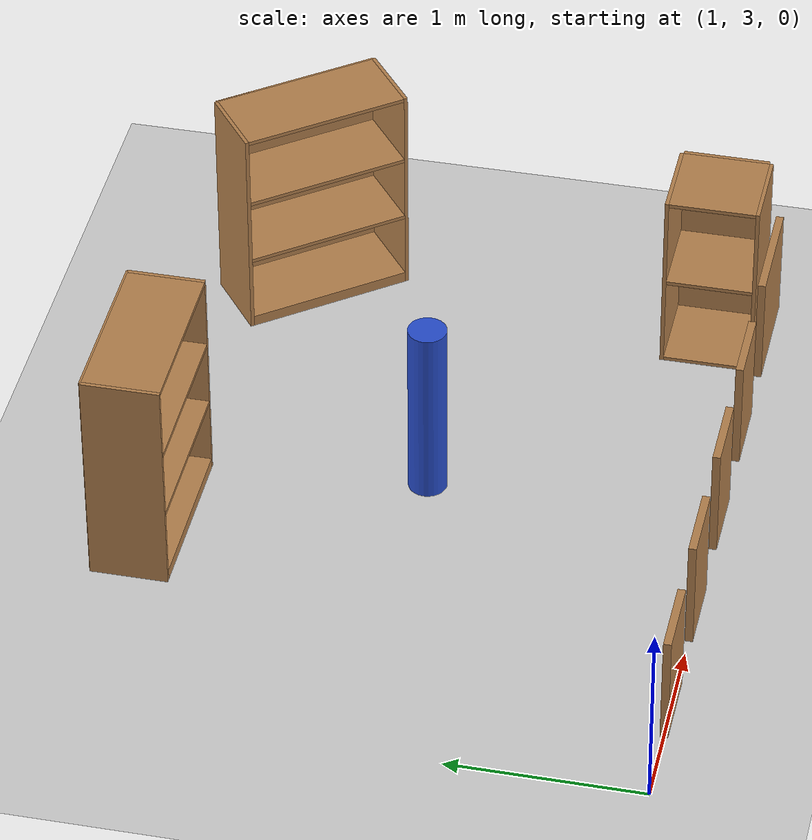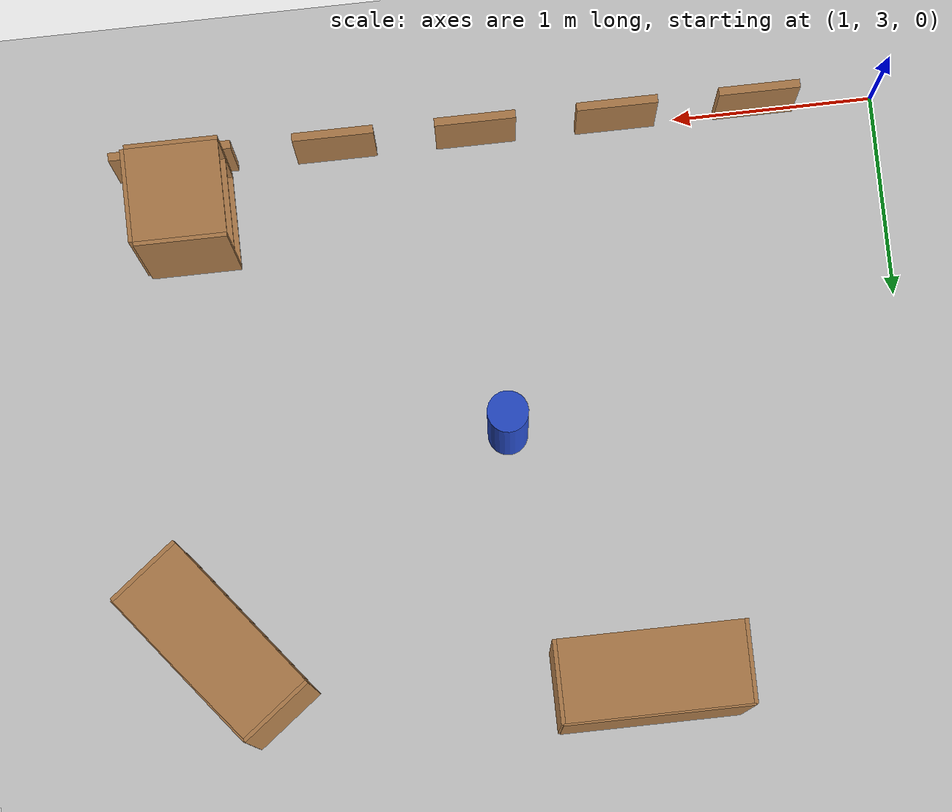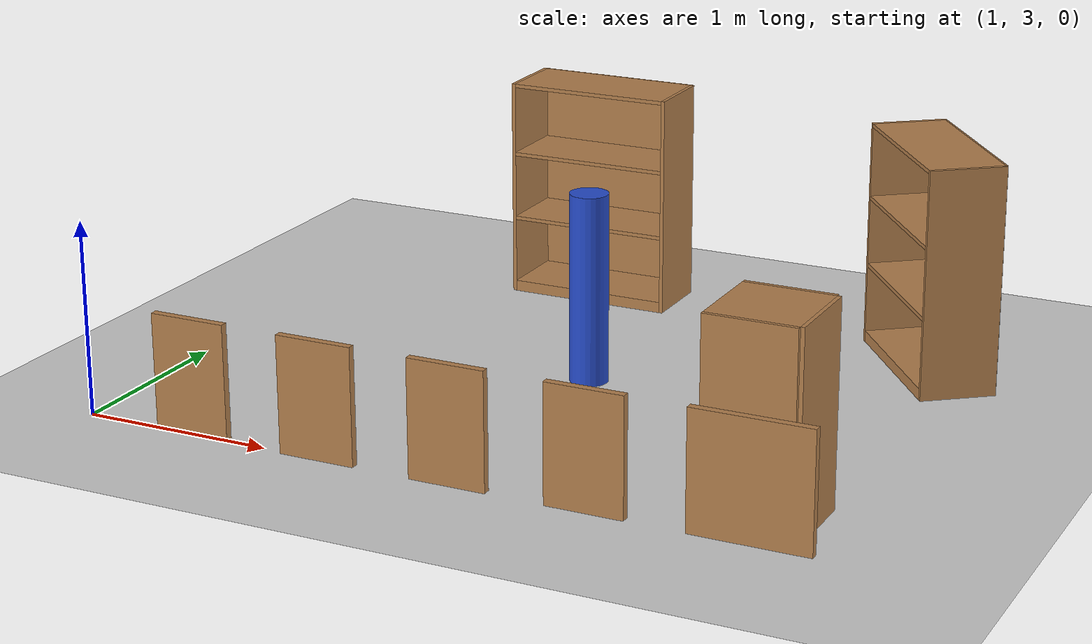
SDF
<sdf version="1.4">
 <world name="default">
  <model name="ground_plane">
   <static>1</static>
   <link name="link">
    <collision name="collision">
     <geometry><plane><normal>0 0 1</normal><size>50 50</size></plane></geometry>
     <surface><friction><ode><mu>100</mu><mu2>50</mu2></ode></friction></surface>
    </collision>
    <visual name="visual">
     <cast_shadows>0</cast_shadows>
     <geometry><plane><normal>0 0 1</normal><size>100 100</size></plane></geometry>
     <material>
      <script><uri>file://media/materials/scripts/gazebo.material</uri><name>Gazebo/Grey</name></script>
     </material>
    </visual>
    <velocity_decay><linear>0</linear><angular>0</angular></velocity_decay>
   </link>
  </model>
  <model name="target_cylinder_C">
   <pose>3 4.5 0.5 0 -0 0</pose>
   <link name="link">
    <inertial>
     <mass>1</mass>
     <inertia><ixx>1</ixx><ixy>0</ixy><ixz>0</ixz><iyy>1</iyy><iyz>0</iyz><izz>1</izz></inertia>
    </inertial>
    <collision name="collision">
     <geometry><cylinder><radius>0.4</radius><length>1</length></cylinder></geometry>
    </collision>
    <visual name="visual">
     <geometry><cylinder><radius>0.1</radius><length>1</length></cylinder></geometry>
     <material>
      <script><uri>file://media/materials/scripts/gazebo.material</uri><name>Gazebo/Blue</name></script>
     </material>
    </visual>
    <velocity_decay><linear>0</linear><angular>0</angular></velocity_decay>
   </link>
   <static>1</static>
  </model>
  <model name="pillar_wall_3">
   <pose>1.6 3 0.3 0 -0 0</pose>
   <link name="link">
    <inertial>
     <mass>1</mass>
     <inertia><ixx>1</ixx><ixy>0</ixy><ixz>0</ixz><iyy>1</iyy><iyz>0</iyz><izz>1</izz></inertia>
    </inertial>
    <collision name="collision"><geometry><box><size>0.4 0.04 0.6</size></box></geometry></collision>
    <visual name="visual">
     <geometry><box><size>0.4 0.04 0.6</size></box></geometry>
     <material>
      <script><uri>file://media/materials/scripts/gazebo.material</uri><name>Gazebo/Wood</name></script>
     </material>
    </visual>
    <velocity_decay><linear>0</linear><angular>0</angular></velocity_decay>
   </link>
   <static>1</static>
  </model>
  <model name="pillar_wall_4">
   <pose>2.3 3 0.3 0 -0 0</pose>
   <link name="link">
    <inertial>
     <mass>1</mass>
     <inertia><ixx>1</ixx><ixy>0</ixy><ixz>0</ixz><iyy>1</iyy><iyz>0</iyz><izz>1</izz></inertia>
    </inertial>
    <collision name="collision"><geometry><box><size>0.4 0.04 0.6</size></box></geometry></collision>
    <visual name="visual">
     <geometry><box><size>0.4 0.04 0.6</size></box></geometry>
     <material>
      <script><uri>file://media/materials/scripts/gazebo.material</uri><name>Gazebo/Wood</name></script>
     </material>
    </visual>
    <velocity_decay><linear>0</linear><angular>0</angular></velocity_decay>
   </link>
   <static>1</static>
  </model>
  <model name="pillar_wall_5">
   <pose>3 3 0.3 0 -0 0</pose>
   <link name="link">
    <inertial>
     <mass>1</mass>
     <inertia><ixx>1</ixx><ixy>0</ixy><ixz>0</ixz><iyy>1</iyy><iyz>0</iyz><izz>1</izz></inertia>
    </inertial>
    <collision name="collision"><geometry><box><size>0.4 0.04 0.6</size></box></geometry></collision>
    <visual name="visual">
     <geometry><box><size>0.4 0.04 0.6</size></box></geometry>
     <material>
      <script><uri>file://media/materials/scripts/gazebo.material</uri><name>Gazebo/Wood</name></script>
     </material>
    </visual>
    <velocity_decay><linear>0</linear><angular>0</angular></velocity_decay>
   </link>
   <static>1</static>
  </model>
  <model name="pillar_wall_6">
   <pose>3.7 3 0.3 0 -0 0</pose>
   <link name="link">
    <inertial>
     <mass>1</mass>
     <inertia><ixx>1</ixx><ixy>0</ixy><ixz>0</ixz><iyy>1</iyy><iyz>0</iyz><izz>1</izz></inertia>
    </inertial>
    <collision name="collision"><geometry><box><size>0.4 0.04 0.6</size></box></geometry></collision>
    <visual name="visual">
     <geometry><box><size>0.4 0.04 0.6</size></box></geometry>
     <material>
      <script><uri>file://media/materials/scripts/gazebo.material</uri><name>Gazebo/Wood</name></script>
     </material>
    </visual>
    <velocity_decay><linear>0</linear><angular>0</angular></velocity_decay>
   </link>
   <static>1</static>
  </model>
  <model name="pillar_wall_7">
   <pose>4.5 3 0.3 0 -0 0</pose>
   <link name="link">
    <inertial>
     <mass>1</mass>
     <inertia><ixx>1</ixx><ixy>0</ixy><ixz>0</ixz><iyy>1</iyy><iyz>0</iyz><izz>1</izz></inertia>
    </inertial>
    <collision name="collision"><geometry><box><size>0.6 0.04 0.6</size></box></geometry></collision>
    <visual name="visual">
     <geometry><box><size>0.6 0.04 0.6</size></box></geometry>
     <material>
      <script><uri>file://media/materials/scripts/gazebo.material</uri><name>Gazebo/Wood</name></script>
     </material>
    </visual>
    <velocity_decay><linear>0</linear><angular>0</angular></velocity_decay>
   </link>
   <static>1</static>
  </model>
  <model name="bookshelf_1">
   <static>1</static>
   <link name="link">
    <inertial><mass>1</mass></inertial>
    <collision name="back">
     <pose>0 0.005 0.6 0 -0 0</pose>
     <geometry><box><size>0.9 0.01 1.2</size></box></geometry>
    </collision>
    <visual name="visual1">
     <pose>0 0.005 0.6 0 -0 0</pose>
     <geometry><box><size>0.9 0.01 1.2</size></box></geometry>
     <material>
      <script><uri>file://media/materials/scripts/gazebo.material</uri><name>Gazebo/Wood</name></script>
     </material>
    </visual>
    <collision name="left_side">
     <pose>0.45 -0.195 0.6 0 -0 0</pose>
     <geometry><box><size>0.02 0.4 1.2</size></box></geometry>
    </collision>
    <visual name="visual2">
     <pose>0.45 -0.195 0.6 0 -0 0</pose>
     <geometry><box><size>0.02 0.4 1.2</size></box></geometry>
     <material>
      <script><uri>file://media/materials/scripts/gazebo.material</uri><name>Gazebo/Wood</name></script>
     </material>
    </visual>
    <collision name="right_side">
     <pose>-0.45 -0.195 0.6 0 -0 0</pose>
     <geometry><box><size>0.02 0.4 1.2</size></box></geometry>
    </collision>
    <visual name="visual3">
     <pose>-0.45 -0.195 0.6 0 -0 0</pose>
     <geometry><box><size>0.02 0.4 1.2</size></box></geometry>
     <material>
      <script><uri>file://media/materials/scripts/gazebo.material</uri><name>Gazebo/Wood</name></script>
     </material>
    </visual>
    <collision name="bottom">
     <pose>0 -0.195 0.03 0 -0 0</pose>
     <geometry><box><size>0.88 0.4 0.06</size></box></geometry>
    </collision>
    <visual name="visual4">
     <pose>0 -0.195 0.03 0 -0 0</pose>
     <geometry><box><size>0.88 0.4 0.06</size></box></geometry>
     <material>
      <script><uri>file://media/materials/scripts/gazebo.material</uri><name>Gazebo/Wood</name></script>
     </material>
    </visual>
    <collision name="top">
     <pose>0 -0.195 1.19 0 -0 0</pose>
     <geometry><box><size>0.88 0.4 0.02</size></box></geometry>
    </collision>
    <visual name="visual5">
     <pose>0 -0.195 1.19 0 -0 0</pose>
     <geometry><box><size>0.88 0.4 0.02</size></box></geometry>
     <material>
      <script><uri>file://media/materials/scripts/gazebo.material</uri><name>Gazebo/Wood</name></script>
     </material>
    </visual>
    <collision name="low_shelf">
     <pose>0 -0.195 0.43 0 -0 0</pose>
     <geometry><box><size>0.88 0.4 0.02</size></box></geometry>
    </collision>
    <visual name="visual6">
     <pose>0 -0.195 0.43 0 -0 0</pose>
     <geometry><box><size>0.88 0.4 0.02</size></box></geometry>
     <material>
      <script><uri>file://media/materials/scripts/gazebo.material</uri><name>Gazebo/Wood</name></script>
     </material>
    </visual>
    <collision name="high_shelf">
     <pose>0 -0.195 0.8 0 -0 0</pose>
     <geometry><box><size>0.88 0.4 0.02</size></box></geometry>
    </collision>
    <visual name="visual7">
     <pose>0 -0.195 0.8 0 -0 0</pose>
     <geometry><box><size>0.88 0.4 0.02</size></box></geometry>
     <material>
      <script><uri>file://media/materials/scripts/gazebo.material</uri><name>Gazebo/Wood</name></script>
     </material>
    </visual>
    <velocity_decay><linear>0</linear><angular>0</angular></velocity_decay>
   </link>
   <pose>2.45547 6 0 0 -0 0</pose>
  </model>
  <model name="bookshelf_2">
   <static>1</static>
   <link name="link">
    <inertial><mass>1</mass></inertial>
    <collision name="back">
     <pose>0 0.005 0.6 0 -0 0</pose>
     <geometry><box><size>0.9 0.01 1.2</size></box></geometry>
    </collision>
    <visual name="visual1">
     <pose>0 0.005 0.6 0 -0 0</pose>
     <geometry><box><size>0.9 0.01 1.2</size></box></geometry>
     <material>
      <script><uri>file://media/materials/scripts/gazebo.material</uri><name>Gazebo/Wood</name></script>
     </material>
    </visual>
    <collision name="left_side">
     <pose>0.45 -0.195 0.6 0 -0 0</pose>
     <geometry><box><size>0.02 0.4 1.2</size></box></geometry>
    </collision>
    <visual name="visual2">
     <pose>0.45 -0.195 0.6 0 -0 0</pose>
     <geometry><box><size>0.02 0.4 1.2</size></box></geometry>
     <material>
      <script><uri>file://media/materials/scripts/gazebo.material</uri><name>Gazebo/Wood</name></script>
     </material>
    </visual>
    <collision name="right_side">
     <pose>-0.45 -0.195 0.6 0 -0 0</pose>
     <geometry><box><size>0.02 0.4 1.2</size></box></geometry>
    </collision>
    <visual name="visual3">
     <pose>-0.45 -0.195 0.6 0 -0 0</pose>
     <geometry><box><size>0.02 0.4 1.2</size></box></geometry>
     <material>
      <script><uri>file://media/materials/scripts/gazebo.material</uri><name>Gazebo/Wood</name></script>
     </material>
    </visual>
    <collision name="bottom">
     <pose>0 -0.195 0.03 0 -0 0</pose>
     <geometry><box><size>0.88 0.4 0.06</size></box></geometry>
    </collision>
    <visual name="visual4">
     <pose>0 -0.195 0.03 0 -0 0</pose>
     <geometry><box><size>0.88 0.4 0.06</size></box></geometry>
     <material>
      <script><uri>file://media/materials/scripts/gazebo.material</uri><name>Gazebo/Wood</name></script>
     </material>
    </visual>
    <collision name="top">
     <pose>0 -0.195 1.19 0 -0 0</pose>
     <geometry><box><size>0.88 0.4 0.02</size></box></geometry>
    </collision>
    <visual name="visual5">
     <pose>0 -0.195 1.19 0 -0 0</pose>
     <geometry><box><size>0.88 0.4 0.02</size></box></geometry>
     <material>
      <script><uri>file://media/materials/scripts/gazebo.material</uri><name>Gazebo/Wood</name></script>
     </material>
    </visual>
    <collision name="low_shelf">
     <pose>0 -0.195 0.43 0 -0 0</pose>
     <geometry><box><size>0.88 0.4 0.02</size></box></geometry>
    </collision>
    <visual name="visual6">
     <pose>0 -0.195 0.43 0 -0 0</pose>
     <geometry><box><size>0.88 0.4 0.02</size></box></geometry>
     <material>
      <script><uri>file://media/materials/scripts/gazebo.material</uri><name>Gazebo/Wood</name></script>
     </material>
    </visual>
    <collision name="high_shelf">
     <pose>0 -0.195 0.8 0 -0 0</pose>
     <geometry><box><size>0.88 0.4 0.02</size></box></geometry>
    </collision>
    <visual name="visual7">
     <pose>0 -0.195 0.8 0 -0 0</pose>
     <geometry><box><size>0.88 0.4 0.02</size></box></geometry>
     <material>
      <script><uri>file://media/materials/scripts/gazebo.material</uri><name>Gazebo/Wood</name></script>
     </material>
    </visual>
    <velocity_decay><linear>0</linear><angular>0</angular></velocity_decay>
   </link>
   <pose>4.65383 5.55808 0 0 0 -0.917052</pose>
  </model>
  <model name="cabinet_1">
   <static>1</static>
   <link name="cabinet_bottom_plate">
    <inertial>
     <pose>0 0 -1 0 -0 0</pose>
     <inertia><ixx>2.05</ixx><ixy>0</ixy><ixz>0</ixz><iyy>2.05</iyy><iyz>0</iyz><izz>2.05</izz></inertia>
     <mass>25</mass>
    </inertial>
    <collision name="cabinet_bottom_plate_geom">
     <pose>0 0 0.01 0 -0 0</pose>
     <geometry><box><size>0.45 0.45 0.02</size></box></geometry>
    </collision>
    <visual name="cabinet_bottom_plate_geom_visual">
     <pose>0 0 0.01 0 -0 0</pose>
     <geometry><box><size>0.45 0.45 0.02</size></box></geometry>
     <material>
      <script><uri>file://media/materials/scripts/gazebo.material</uri><name>Gazebo/Wood</name></script>
     </material>
    </visual>
    <collision name="cabinet_bottom_plate_geom_cabinet_back_plate">
     <pose>0.235 0 0.51 0 -0 0</pose>
     <geometry><box><size>0.02 0.45 1.02</size></box></geometry>
    </collision>
    <visual name="cabinet_bottom_plate_geom_cabinet_back_plate_visual">
     <pose>0.235 0 0.51 0 -0 0</pose>
     <geometry><box><size>0.02 0.45 1.02</size></box></geometry>
     <material>
      <script><uri>file://media/materials/scripts/gazebo.material</uri><name>Gazebo/Wood</name></script>
     </material>
    </visual>
    <collision name="cabinet_bottom_plate_geom_cabinet_left_plate">
     <pose>0 0.235 0.51 0 -0 0</pose>
     <geometry><box><size>0.45 0.02 1.02</size></box></geometry>
    </collision>
    <visual name="cabinet_bottom_plate_geom_cabinet_left_plate_visual">
     <pose>0 0.235 0.51 0 -0 0</pose>
     <geometry><box><size>0.45 0.02 1.02</size></box></geometry>
     <material>
      <script><uri>file://media/materials/scripts/gazebo.material</uri><name>Gazebo/Wood</name></script>
     </material>
    </visual>
    <collision name="cabinet_bottom_plate_geom_cabinet_middle_plate">
     <pose>0 0 0.51 0 -0 0</pose>
     <geometry><box><size>0.45 0.45 0.02</size></box></geometry>
    </collision>
    <visual name="cabinet_bottom_plate_geom_cabinet_middle_plate_visual">
     <pose>0 0 0.51 0 -0 0</pose>
     <geometry><box><size>0.45 0.45 0.02</size></box></geometry>
     <material>
      <script><uri>file://media/materials/scripts/gazebo.material</uri><name>Gazebo/Wood</name></script>
     </material>
    </visual>
    <collision name="cabinet_bottom_plate_geom_cabinet_right_plate">
     <pose>0 -0.235 0.51 0 -0 0</pose>
     <geometry><box><size>0.45 0.02 1.02</size></box></geometry>
    </collision>
    <visual name="cabinet_bottom_plate_geom_cabinet_right_plate_visual">
     <pose>0 -0.235 0.51 0 -0 0</pose>
     <geometry><box><size>0.45 0.02 1.02</size></box></geometry>
     <material>
      <script><uri>file://media/materials/scripts/gazebo.material</uri><name>Gazebo/Wood</name></script>
     </material>
    </visual>
    <collision name="cabinet_bottom_plate_geom_cabinet_top_plate">
     <pose>0 0 1.01 0 -0 0</pose>
     <geometry><box><size>0.45 0.45 0.02</size></box></geometry>
    </collision>
    <visual name="cabinet_bottom_plate_geom_cabinet_top_plate_visual">
     <pose>0 0 1.01 0 -0 0</pose>
     <geometry><box><size>0.45 0.45 0.02</size></box></geometry>
     <material>
      <script><uri>file://media/materials/scripts/gazebo.material</uri><name>Gazebo/Wood</name></script>
     </material>
    </visual>
    <velocity_decay><linear>0</linear><angular>0</angular></velocity_decay>
   </link>
   <pose>4.46055 3.27831 0 0 -0 0</pose>
  </model>
 </world>
</sdf>
